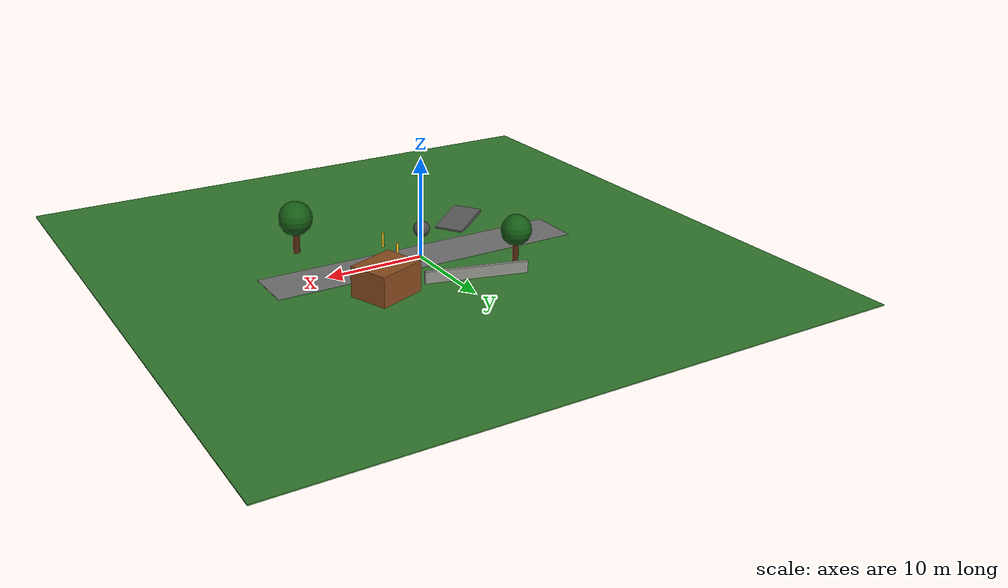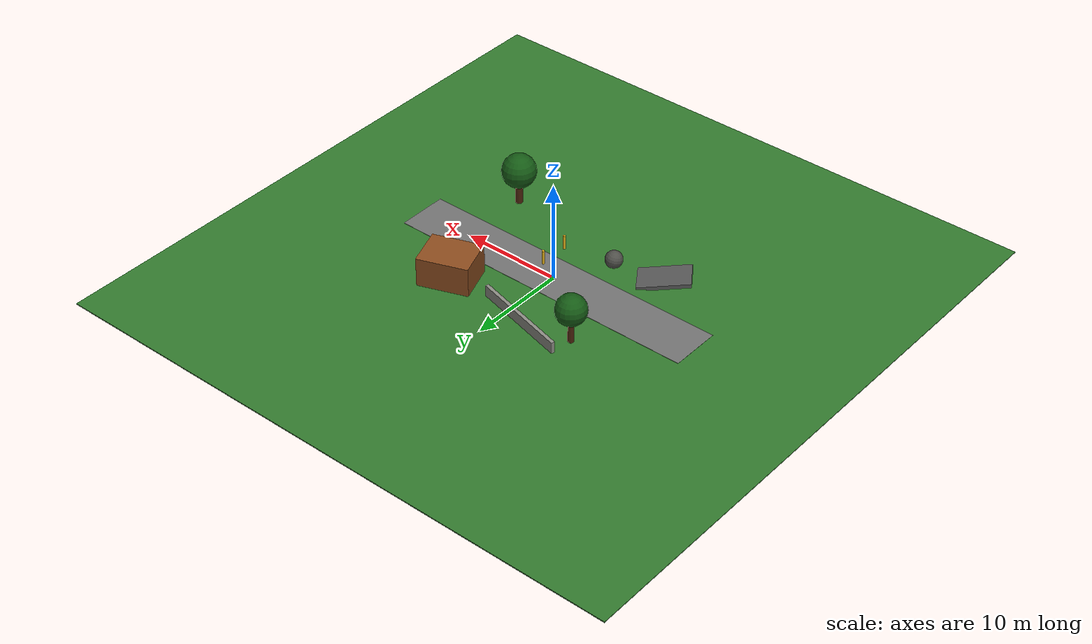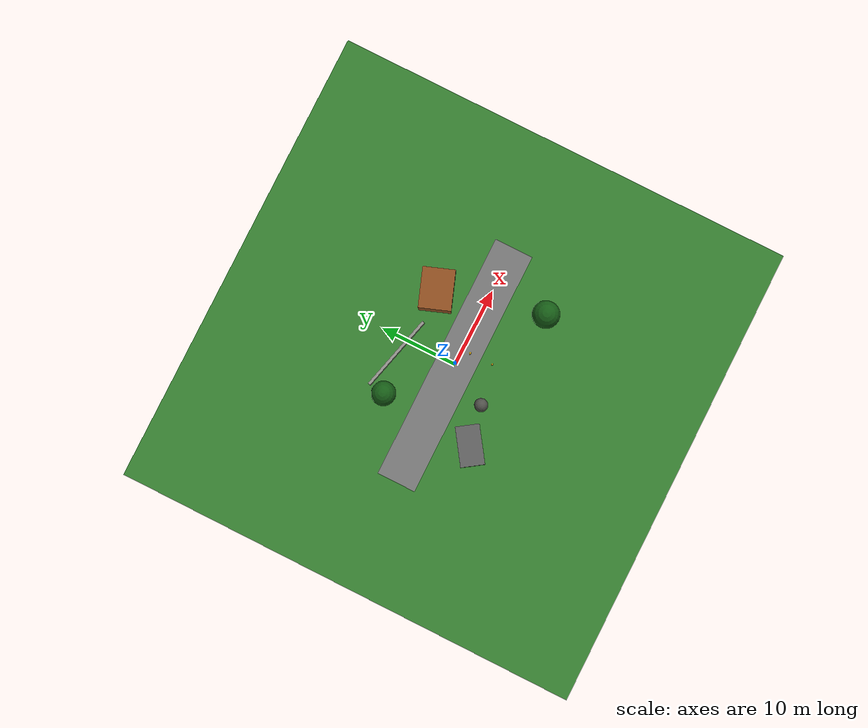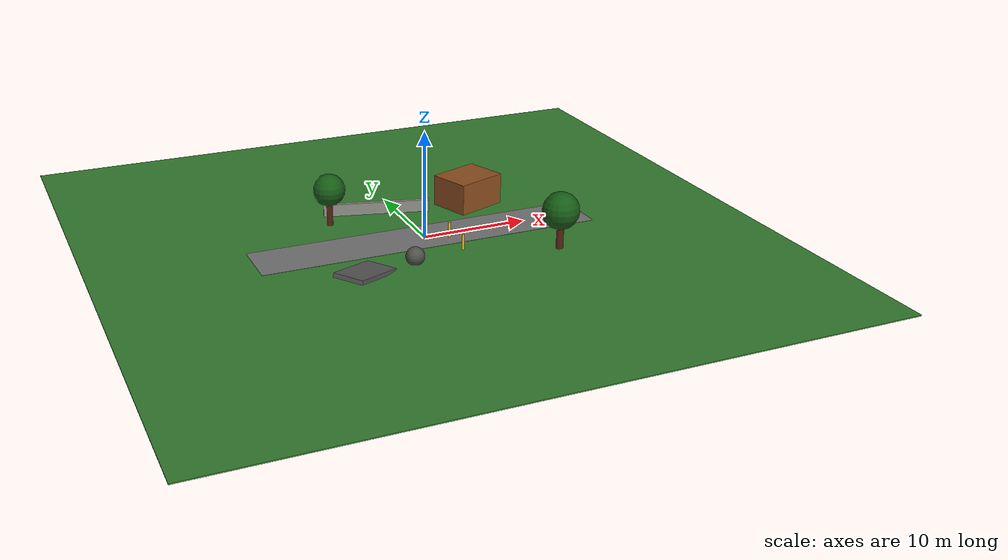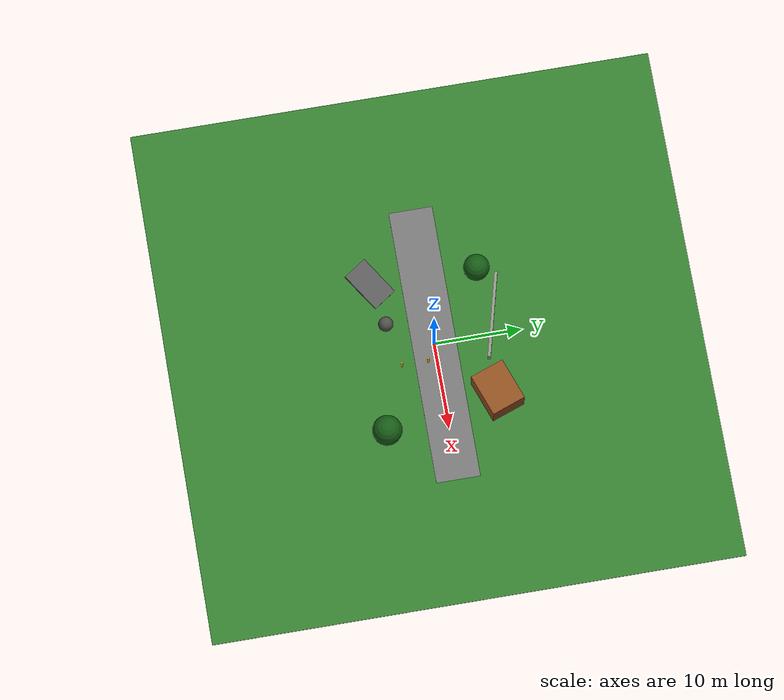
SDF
<?xml version="1.0"?>
<sdf version="1.9">
  <world name="outdoor">
    <physics name="1ms" type="ignored">
      <max_step_size>0.001</max_step_size>
      <real_time_factor>1.0</real_time_factor>
    </physics>

    <plugin filename="gz-sim-physics-system" name="gz::sim::systems::Physics"/>
    <plugin filename="gz-sim-user-commands-system" name="gz::sim::systems::UserCommands"/>
    <plugin filename="gz-sim-scene-broadcaster-system" name="gz::sim::systems::SceneBroadcaster"/>
    <plugin filename="gz-sim-imu-system" name="gz::sim::systems::Imu"/>
    <plugin filename="gz-sim-sensors-system" name="gz::sim::systems::Sensors">
      <render_engine>ogre2</render_engine>
    </plugin>

    <scene>
      <ambient>0.6 0.6 0.6 1</ambient>
      <background>0.45 0.70 0.95 1</background>
      <shadows>true</shadows>
    </scene>

    <light type="directional" name="sun">
      <cast_shadows>true</cast_shadows>
      <pose>0 0 20 0 0 0</pose>
      <diffuse>0.9 0.9 0.85 1</diffuse>
      <specular>0.2 0.2 0.2 1</specular>
      <direction>-0.4 0.2 -1.0</direction>
    </light>

    <model name="ground">
      <static>true</static>
      <link name="link">
        <collision name="collision">
          <geometry><box><size>60 60 0.10</size></box></geometry>
        </collision>
        <visual name="visual">
          <geometry><box><size>60 60 0.10</size></box></geometry>
          <material>
            <ambient>0.20 0.48 0.18 1</ambient>
            <diffuse>0.20 0.48 0.18 1</diffuse>
          </material>
        </visual>
      </link>
    </model>

    <model name="concrete_path">
      <static>true</static>
      <pose>0 0 0.015 0 0 0</pose>
      <link name="link">
        <collision name="collision"><geometry><box><size>32 5 0.12</size></box></geometry></collision>
        <visual name="visual">
          <geometry><box><size>32 5 0.12</size></box></geometry>
          <material><ambient>0.45 0.45 0.45 1</ambient><diffuse>0.45 0.45 0.45 1</diffuse></material>
        </visual>
      </link>
    </model>

    <model name="shed">
      <static>true</static>
      <pose>7 6 1.5 0 0 0.35</pose>
      <link name="link">
        <collision name="collision"><geometry><box><size>5 4 3</size></box></geometry></collision>
        <visual name="visual">
          <geometry><box><size>5 4 3</size></box></geometry>
          <material><ambient>0.55 0.30 0.12 1</ambient><diffuse>0.55 0.30 0.12 1</diffuse></material>
        </visual>
      </link>
    </model>

    <model name="low_wall">
      <static>true</static>
      <pose>-2 7 0.6 0 0 -0.25</pose>
      <link name="link">
        <collision name="collision"><geometry><box><size>10 0.35 1.2</size></box></geometry></collision>
        <visual name="visual">
          <geometry><box><size>10 0.35 1.2</size></box></geometry>
          <material><ambient>0.55 0.55 0.52 1</ambient><diffuse>0.55 0.55 0.52 1</diffuse></material>
        </visual>
      </link>
    </model>

    <model name="ramp">
      <static>true</static>
      <pose>-8 -6 0.40 0 0.15 0.6</pose>
      <link name="link">
        <collision name="collision"><geometry><box><size>5 3 0.4</size></box></geometry></collision>
        <visual name="visual">
          <geometry><box><size>5 3 0.4</size></box></geometry>
          <material><ambient>0.35 0.35 0.35 1</ambient><diffuse>0.35 0.35 0.35 1</diffuse></material>
        </visual>
      </link>
    </model>

    <model name="tree_1">
      <static>true</static>
      <pose>-7 6 0 0 0 0</pose>
      <link name="trunk">
        <pose>0 0 1.5 0 0 0</pose>
        <collision name="collision"><geometry><cylinder><radius>0.30</radius><length>3.0</length></cylinder></geometry></collision>
        <visual name="visual"><geometry><cylinder><radius>0.30</radius><length>3.0</length></cylinder></geometry><material><ambient>0.30 0.14 0.05 1</ambient><diffuse>0.30 0.14 0.05 1</diffuse></material></visual>
      </link>
      <link name="canopy">
        <pose>0 0 3.5 0 0 0</pose>
        <collision name="collision"><geometry><sphere><radius>1.5</radius></sphere></geometry></collision>
        <visual name="visual"><geometry><sphere><radius>1.5</radius></sphere></geometry><material><ambient>0.08 0.35 0.08 1</ambient><diffuse>0.08 0.35 0.08 1</diffuse></material></visual>
      </link>
      <joint name="canopy_fixed" type="fixed"><parent>trunk</parent><child>canopy</child></joint>
    </model>

    <model name="tree_2">
      <static>true</static>
      <pose>10 -7 0 0 0 0</pose>
      <link name="trunk">
        <pose>0 0 1.5 0 0 0</pose>
        <collision name="collision"><geometry><cylinder><radius>0.35</radius><length>3.0</length></cylinder></geometry></collision>
        <visual name="visual"><geometry><cylinder><radius>0.35</radius><length>3.0</length></cylinder></geometry><material><ambient>0.30 0.14 0.05 1</ambient><diffuse>0.30 0.14 0.05 1</diffuse></material></visual>
      </link>
      <link name="canopy">
        <pose>0 0 3.6 0 0 0</pose>
        <collision name="collision"><geometry><sphere><radius>1.7</radius></sphere></geometry></collision>
        <visual name="visual"><geometry><sphere><radius>1.7</radius></sphere></geometry><material><ambient>0.08 0.35 0.08 1</ambient><diffuse>0.08 0.35 0.08 1</diffuse></material></visual>
      </link>
      <joint name="canopy_fixed" type="fixed"><parent>trunk</parent><child>canopy</child></joint>
    </model>

    <model name="boulder_1">
      <static>true</static>
      <pose>-3 -5 0.65 0.15 -0.20 0.4</pose>
      <link name="link">
        <collision name="collision"><geometry><sphere><radius>0.85</radius></sphere></geometry></collision>
        <visual name="visual"><geometry><sphere><radius>0.85</radius></sphere></geometry><material><ambient>0.30 0.30 0.28 1</ambient><diffuse>0.30 0.30 0.28 1</diffuse></material></visual>
      </link>
    </model>

    <model name="post_1">
      <static>true</static>
      <pose>2 -4 0.75 0 0 0</pose>
      <link name="link">
        <collision name="collision"><geometry><cylinder><radius>0.12</radius><length>1.5</length></cylinder></geometry></collision>
        <visual name="visual"><geometry><cylinder><radius>0.12</radius><length>1.5</length></cylinder></geometry><material><ambient>0.9 0.7 0.1 1</ambient><diffuse>0.9 0.7 0.1 1</diffuse></material></visual>
      </link>
    </model>

    <model name="post_2">
      <static>true</static>
      <pose>2 -1 0.75 0 0 0</pose>
      <link name="link">
        <collision name="collision"><geometry><cylinder><radius>0.12</radius><length>1.5</length></cylinder></geometry></collision>
        <visual name="visual"><geometry><cylinder><radius>0.12</radius><length>1.5</length></cylinder></geometry><material><ambient>0.9 0.7 0.1 1</ambient><diffuse>0.9 0.7 0.1 1</diffuse></material></visual>
      </link>
    </model>
  </world>
</sdf>
